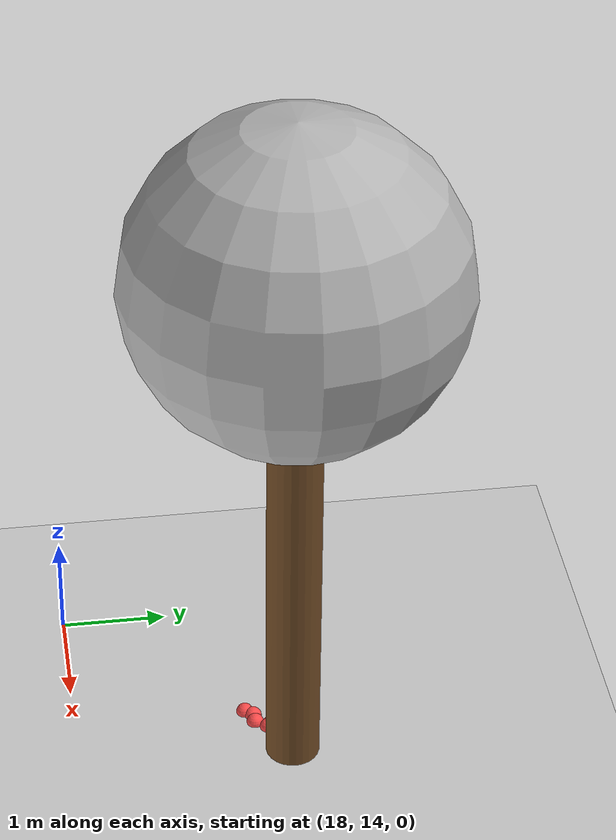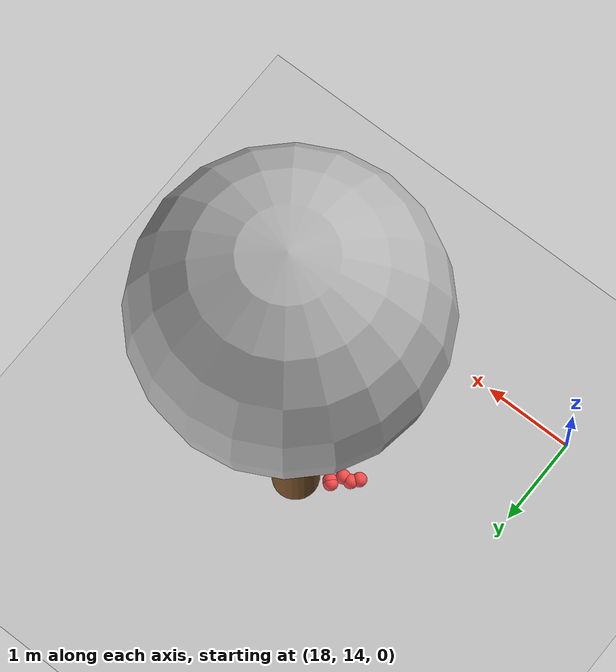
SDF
<sdf version="1.7">
 <world name="default">
  <model name="ground_plane">
   <static>1</static>
   <link name="link">
    <collision name="collision">
     <geometry><plane><normal>0 0 1</normal><size>100 100</size></plane></geometry>
     <surface>
      <contact><collide_bitmask>65535</collide_bitmask></contact>
      <friction><ode><mu>100</mu><mu2>50</mu2></ode></friction>
     </surface>
    </collision>
    <visual name="visual">
     <cast_shadows>0</cast_shadows>
     <geometry><plane><normal>0 0 1</normal><size>100 100</size></plane></geometry>
     <material>
      <script><uri>file://media/materials/scripts/gazebo.material</uri><name>Gazebo/Grey</name></script>
     </material>
    </visual>
   </link>
  </model>
  <model name="tree_simple_58">
   <static>1</static>
   <link name="link">
    <pose>0 0 0.1 0 -0 0</pose>
    <inertial>
     <mass>666</mass>
     <inertia>
      <ixx>0.0861167</ixx>
      <ixy>0</ixy>
      <ixz>0</ixz>
      <iyy>0.0861167</iyy>
      <iyz>0</iyz>
      <izz>0.0861167</izz>
     </inertia>
    </inertial>
    <collision name="collision_trunk">
     <pose>0 0 2 0 -0 0</pose>
     <geometry><cylinder><radius>0.25</radius><length>4</length></cylinder></geometry>
     <surface>
      <contact>
       <poissons_ratio>0.347</poissons_ratio>
       <elastic_modulus>8.8e+09</elastic_modulus>
       <ode><kp>100000</kp><kd>100</kd><max_vel>100</max_vel><min_depth>0.001</min_depth></ode>
      </contact>
      <friction>
       <torsional>
        <coefficient>1</coefficient>
        <use_patch_radius>0</use_patch_radius>
        <surface_radius>0.01</surface_radius>
       </torsional>
      </friction>
     </surface>
    </collision>
    <collision name="collision_treetop">
     <pose>0 0 5.2 0 -0 0</pose>
     <geometry><sphere><radius>1.5</radius></sphere></geometry>
     <surface>
      <contact>
       <poissons_ratio>0.347</poissons_ratio>
       <elastic_modulus>8.8e+09</elastic_modulus>
       <ode><kp>100000</kp><kd>100</kd><max_vel>100</max_vel><min_depth>0.001</min_depth></ode>
      </contact>
      <friction>
       <torsional>
        <coefficient>1</coefficient>
        <use_patch_radius>0</use_patch_radius>
        <surface_radius>0.01</surface_radius>
       </torsional>
      </friction>
     </surface>
    </collision>
    <visual name="trunk">
     <pose>0 0 2 0 -0 0</pose>
     <geometry><cylinder><radius>0.25</radius><length>4</length></cylinder></geometry>
     <material>
      <script>
       <uri>model://tree_simple/scripts</uri>
       <uri>model://tree_simple/materials/textures</uri>
       <name>TreeSimple/Trunk</name>
      </script>
     </material>
    </visual>
    <visual name="treetop">
     <pose>0 0 5.2 0 -0 0</pose>
     <geometry><sphere><radius>1.5</radius></sphere></geometry>
     <material>
      <script>
       <uri>model://tree_simple/scripts</uri>
       <uri>model://tree_simple/materials/textures</uri>
       <name>TreeSimple/Treetop</name>
      </script>
     </material>
    </visual>
   </link>
   <pose>20 16 -0.1 0 -0 0</pose>
  </model>
  <model name="seed_red_245">
   <link name="link">
    <inertial>
     <mass>1</mass>
     <inertia><ixx>0.1</ixx><ixy>0</ixy><ixz>0</ixz><iyy>0.1</iyy><iyz>0</iyz><izz>0.1</izz></inertia>
    </inertial>
    <visual name="visual">
     <geometry><sphere><radius>0.08</radius></sphere></geometry>
     <material>
      <script><name>Gazebo/Grey</name><uri>file://media/materials/scripts/gazebo.material</uri></script>
      <shader type="pixel"><normal_map>__default__</normal_map></shader>
      <ambient>1 0.3 0.3 1</ambient>
      <diffuse>0.7 0.7 0.7 1</diffuse>
      <specular>0.01 0.01 0.01 1</specular>
      <emissive>0 0 0 1</emissive>
     </material>
    </visual>
    <collision name="collision">
     <geometry><sphere><radius>0.0005</radius></sphere></geometry>
     <surface>
      <friction>
       <ode><mu>1</mu><mu2>1</mu2><fdir1>0 0 0</fdir1><slip1>0</slip1><slip2>0</slip2></ode>
       <torsional>
        <coefficient>1</coefficient>
        <patch_radius>0</patch_radius>
        <surface_radius>0</surface_radius>
        <use_patch_radius>1</use_patch_radius>
        <ode><slip>0</slip></ode>
       </torsional>
      </friction>
      <bounce><restitution_coefficient>0</restitution_coefficient><threshold>1e+06</threshold></bounce>
      <contact>
       <collide_without_contact>0</collide_without_contact>
       <collide_without_contact_bitmask>1</collide_without_contact_bitmask>
       <collide_bitmask>1</collide_bitmask>
       <ode>
        <soft_cfm>0</soft_cfm>
        <soft_erp>0.2</soft_erp>
        <kp>1e+13</kp>
        <kd>1</kd>
        <max_vel>0.01</max_vel>
        <min_depth>0</min_depth>
       </ode>
       <bullet>
        <split_impulse>1</split_impulse>
        <split_impulse_penetration_threshold>-0.01</split_impulse_penetration_threshold>
        <soft_cfm>0</soft_cfm>
        <soft_erp>0.2</soft_erp>
        <kp>1e+13</kp>
        <kd>1</kd>
       </bullet>
      </contact>
     </surface>
    </collision>
   </link>
   <static>0</static>
   <pose>19.6707 15.8365 0.0005 0 -0 0</pose>
  </model>
  <model name="seed_red_246">
   <link name="link">
    <inertial>
     <mass>1</mass>
     <inertia><ixx>0.1</ixx><ixy>0</ixy><ixz>0</ixz><iyy>0.1</iyy><iyz>0</iyz><izz>0.1</izz></inertia>
    </inertial>
    <visual name="visual">
     <geometry><sphere><radius>0.08</radius></sphere></geometry>
     <material>
      <script><name>Gazebo/Grey</name><uri>file://media/materials/scripts/gazebo.material</uri></script>
      <shader type="pixel"><normal_map>__default__</normal_map></shader>
      <ambient>1 0.3 0.3 1</ambient>
      <diffuse>0.7 0.7 0.7 1</diffuse>
      <specular>0.01 0.01 0.01 1</specular>
      <emissive>0 0 0 1</emissive>
     </material>
    </visual>
    <collision name="collision">
     <geometry><sphere><radius>0.0005</radius></sphere></geometry>
     <surface>
      <friction>
       <ode><mu>1</mu><mu2>1</mu2><fdir1>0 0 0</fdir1><slip1>0</slip1><slip2>0</slip2></ode>
       <torsional>
        <coefficient>1</coefficient>
        <patch_radius>0</patch_radius>
        <surface_radius>0</surface_radius>
        <use_patch_radius>1</use_patch_radius>
        <ode><slip>0</slip></ode>
       </torsional>
      </friction>
      <bounce><restitution_coefficient>0</restitution_coefficient><threshold>1e+06</threshold></bounce>
      <contact>
       <collide_without_contact>0</collide_without_contact>
       <collide_without_contact_bitmask>1</collide_without_contact_bitmask>
       <collide_bitmask>1</collide_bitmask>
       <ode>
        <soft_cfm>0</soft_cfm>
        <soft_erp>0.2</soft_erp>
        <kp>1e+13</kp>
        <kd>1</kd>
        <max_vel>0.01</max_vel>
        <min_depth>0</min_depth>
       </ode>
       <bullet>
        <split_impulse>1</split_impulse>
        <split_impulse_penetration_threshold>-0.01</split_impulse_penetration_threshold>
        <soft_cfm>0</soft_cfm>
        <soft_erp>0.2</soft_erp>
        <kp>1e+13</kp>
        <kd>1</kd>
       </bullet>
      </contact>
     </surface>
    </collision>
   </link>
   <static>0</static>
   <pose>19.6945 15.8143 0.0005 0 -0 0</pose>
  </model>
  <model name="seed_red_247">
   <link name="link">
    <inertial>
     <mass>1</mass>
     <inertia><ixx>0.1</ixx><ixy>0</ixy><ixz>0</ixz><iyy>0.1</iyy><iyz>0</iyz><izz>0.1</izz></inertia>
    </inertial>
    <visual name="visual">
     <geometry><sphere><radius>0.08</radius></sphere></geometry>
     <material>
      <script><name>Gazebo/Grey</name><uri>file://media/materials/scripts/gazebo.material</uri></script>
      <shader type="pixel"><normal_map>__default__</normal_map></shader>
      <ambient>1 0.3 0.3 1</ambient>
      <diffuse>0.7 0.7 0.7 1</diffuse>
      <specular>0.01 0.01 0.01 1</specular>
      <emissive>0 0 0 1</emissive>
     </material>
    </visual>
    <collision name="collision">
     <geometry><sphere><radius>0.0005</radius></sphere></geometry>
     <surface>
      <friction>
       <ode><mu>1</mu><mu2>1</mu2><fdir1>0 0 0</fdir1><slip1>0</slip1><slip2>0</slip2></ode>
       <torsional>
        <coefficient>1</coefficient>
        <patch_radius>0</patch_radius>
        <surface_radius>0</surface_radius>
        <use_patch_radius>1</use_patch_radius>
        <ode><slip>0</slip></ode>
       </torsional>
      </friction>
      <bounce><restitution_coefficient>0</restitution_coefficient><threshold>1e+06</threshold></bounce>
      <contact>
       <collide_without_contact>0</collide_without_contact>
       <collide_without_contact_bitmask>1</collide_without_contact_bitmask>
       <collide_bitmask>1</collide_bitmask>
       <ode>
        <soft_cfm>0</soft_cfm>
        <soft_erp>0.2</soft_erp>
        <kp>1e+13</kp>
        <kd>1</kd>
        <max_vel>0.01</max_vel>
        <min_depth>0</min_depth>
       </ode>
       <bullet>
        <split_impulse>1</split_impulse>
        <split_impulse_penetration_threshold>-0.01</split_impulse_penetration_threshold>
        <soft_cfm>0</soft_cfm>
        <soft_erp>0.2</soft_erp>
        <kp>1e+13</kp>
        <kd>1</kd>
       </bullet>
      </contact>
     </surface>
    </collision>
   </link>
   <static>0</static>
   <pose>19.6129 15.6991 0.0005 0 -0 0</pose>
  </model>
  <model name="seed_red_249">
   <link name="link">
    <inertial>
     <mass>1</mass>
     <inertia><ixx>0.1</ixx><ixy>0</ixy><ixz>0</ixz><iyy>0.1</iyy><iyz>0</iyz><izz>0.1</izz></inertia>
    </inertial>
    <visual name="visual">
     <geometry><sphere><radius>0.08</radius></sphere></geometry>
     <material>
      <script><name>Gazebo/Grey</name><uri>file://media/materials/scripts/gazebo.material</uri></script>
      <shader type="pixel"><normal_map>__default__</normal_map></shader>
      <ambient>1 0.3 0.3 1</ambient>
      <diffuse>0.7 0.7 0.7 1</diffuse>
      <specular>0.01 0.01 0.01 1</specular>
      <emissive>0 0 0 1</emissive>
     </material>
    </visual>
    <collision name="collision">
     <geometry><sphere><radius>0.0005</radius></sphere></geometry>
     <surface>
      <friction>
       <ode><mu>1</mu><mu2>1</mu2><fdir1>0 0 0</fdir1><slip1>0</slip1><slip2>0</slip2></ode>
       <torsional>
        <coefficient>1</coefficient>
        <patch_radius>0</patch_radius>
        <surface_radius>0</surface_radius>
        <use_patch_radius>1</use_patch_radius>
        <ode><slip>0</slip></ode>
       </torsional>
      </friction>
      <bounce><restitution_coefficient>0</restitution_coefficient><threshold>1e+06</threshold></bounce>
      <contact>
       <collide_without_contact>0</collide_without_contact>
       <collide_without_contact_bitmask>1</collide_without_contact_bitmask>
       <collide_bitmask>1</collide_bitmask>
       <ode>
        <soft_cfm>0</soft_cfm>
        <soft_erp>0.2</soft_erp>
        <kp>1e+13</kp>
        <kd>1</kd>
        <max_vel>0.01</max_vel>
        <min_depth>0</min_depth>
       </ode>
       <bullet>
        <split_impulse>1</split_impulse>
        <split_impulse_penetration_threshold>-0.01</split_impulse_penetration_threshold>
        <soft_cfm>0</soft_cfm>
        <soft_erp>0.2</soft_erp>
        <kp>1e+13</kp>
        <kd>1</kd>
       </bullet>
      </contact>
     </surface>
    </collision>
   </link>
   <static>0</static>
   <pose>19.4607 15.6194 0.0005 0 -0 0</pose>
  </model>
  <model name="seed_red_251">
   <link name="link">
    <inertial>
     <mass>1</mass>
     <inertia><ixx>0.1</ixx><ixy>0</ixy><ixz>0</ixz><iyy>0.1</iyy><iyz>0</iyz><izz>0.1</izz></inertia>
    </inertial>
    <visual name="visual">
     <geometry><sphere><radius>0.08</radius></sphere></geometry>
     <material>
      <script><name>Gazebo/Grey</name><uri>file://media/materials/scripts/gazebo.material</uri></script>
      <shader type="pixel"><normal_map>__default__</normal_map></shader>
      <ambient>1 0.3 0.3 1</ambient>
      <diffuse>0.7 0.7 0.7 1</diffuse>
      <specular>0.01 0.01 0.01 1</specular>
      <emissive>0 0 0 1</emissive>
     </material>
    </visual>
    <collision name="collision">
     <geometry><sphere><radius>0.0005</radius></sphere></geometry>
     <surface>
      <friction>
       <ode><mu>1</mu><mu2>1</mu2><fdir1>0 0 0</fdir1><slip1>0</slip1><slip2>0</slip2></ode>
       <torsional>
        <coefficient>1</coefficient>
        <patch_radius>0</patch_radius>
        <surface_radius>0</surface_radius>
        <use_patch_radius>1</use_patch_radius>
        <ode><slip>0</slip></ode>
       </torsional>
      </friction>
      <bounce><restitution_coefficient>0</restitution_coefficient><threshold>1e+06</threshold></bounce>
      <contact>
       <collide_without_contact>0</collide_without_contact>
       <collide_without_contact_bitmask>1</collide_without_contact_bitmask>
       <collide_bitmask>1</collide_bitmask>
       <ode>
        <soft_cfm>0</soft_cfm>
        <soft_erp>0.2</soft_erp>
        <kp>1e+13</kp>
        <kd>1</kd>
        <max_vel>0.01</max_vel>
        <min_depth>0</min_depth>
       </ode>
       <bullet>
        <split_impulse>1</split_impulse>
        <split_impulse_penetration_threshold>-0.01</split_impulse_penetration_threshold>
        <soft_cfm>0</soft_cfm>
        <soft_erp>0.2</soft_erp>
        <kp>1e+13</kp>
        <kd>1</kd>
       </bullet>
      </contact>
     </surface>
    </collision>
   </link>
   <static>0</static>
   <pose>19.5199 15.6906 0.0005 0 -0 0</pose>
  </model>
 </world>
</sdf>
